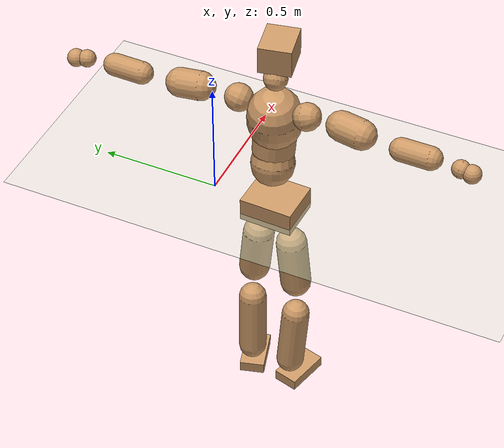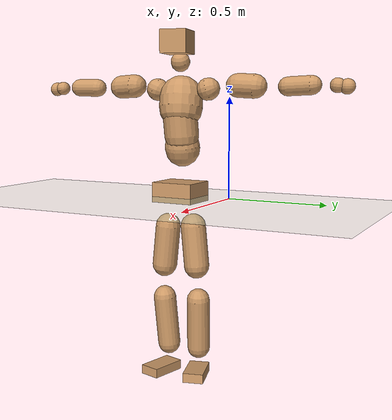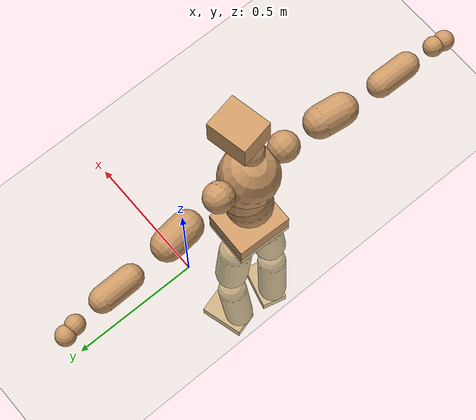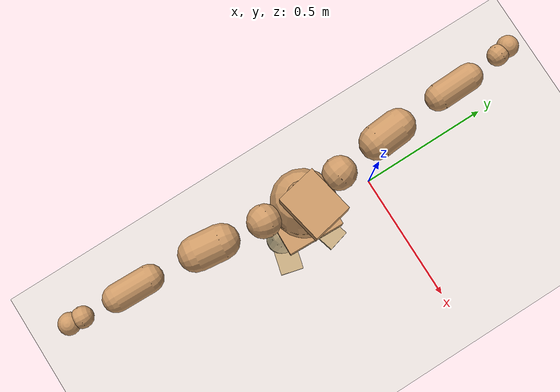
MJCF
<mujoco model="humanoid">
  <compiler coordinate="local" angle="radian"/>
  <default>
    <joint damping="0.0" armature="0.01" stiffness="0.0" limited="true"/>
    <geom conaffinity="1" condim="3" contype="7" margin="0.001" rgba="0.8 0.6 .4 1"/>
  </default>
  <asset>
    <texture type="skybox" builtin="gradient" rgb1=".4 .5 .6" rgb2="0 0 0" width="100" height="100"/>
    <texture builtin="flat" height="1278" mark="cross" markrgb="1 1 1" name="texgeom" random="0.01" rgb1="0.8 0.6 0.4" rgb2="0.8 0.6 0.4" type="cube" width="127"/>
    <texture builtin="checker" height="100" name="texplane" rgb1="0 0 0" rgb2="0.8 0.8 0.8" type="2d" width="100"/>
    <material name="MatPlane" reflectance="0.5" shininess="1" specular="1" texrepeat="60 60" texture="texplane"/>
    <material name="geom" texture="texgeom" texuniform="true"/>
  </asset>
  <worldbody>
    <light cutoff="100" diffuse="1 1 1" dir="-0 0 -1.3" directional="true" exponent="1" pos="0 0 1.3" specular=".1 .1 .1"/>
    <geom conaffinity="1" condim="3" name="floor" pos="0 0 0" rgba="0.8 0.9 0.8 1" size="100 100 .2" type="plane" material="MatPlane"/>
    <body name="Pelvis" pos="-0.0016 -0.2806 0.0282">
      <freejoint name="Pelvis"/>
      <geom type="box" contype="1" conaffinity="1" density="5359.375425" pos="-0.0118 0.0004 -0.0085" size="0.0958 0.1123 0.051" quat="0.9999 0.0000 0.0000 -0.0168" name="Pelvis"/>
      <body name="L_Hip" pos="-0.0184 0.0626 -0.0911">
        <joint name="L_Hip_x" type="hinge" pos="0 0 0" axis="1 0 0" stiffness="1600" damping="160" armature="0.02" range="-180.0000 180.0000"/>
        <joint name="L_Hip_y" type="hinge" pos="0 0 0" axis="0 1 0" stiffness="1600" damping="160" armature="0.02" range="-180.0000 180.0000"/>
        <joint name="L_Hip_z" type="hinge" pos="0 0 0" axis="0 0 1" stiffness="1600" damping="160" armature="0.02" range="-180.0000 180.0000"/>
        <geom type="capsule" contype="1" conaffinity="1" density="2040.816327" size="0.0652" fromto="0.0015 0.0099 -0.0946 0.0046 0.0316 -0.3026" name="L_Hip"/>
        <body name="L_Knee" pos="0.0061 0.0415 -0.3973">
          <joint name="L_Knee_x" type="hinge" pos="0 0 0" axis="1 0 0" stiffness="1600" damping="160" armature="0.02" range="-180.0000 180.0000"/>
          <joint name="L_Knee_y" type="hinge" pos="0 0 0" axis="0 1 0" stiffness="1600" damping="160" armature="0.02" range="-180.0000 180.0000"/>
          <joint name="L_Knee_z" type="hinge" pos="0 0 0" axis="0 0 1" stiffness="1600" damping="160" armature="0.02" range="-180.0000 180.0000"/>
          <geom type="capsule" contype="1" conaffinity="1" density="1234.567901" size="0.0594" fromto="-0.0085 -0.0034 -0.0889 -0.0339 -0.0135 -0.3546" name="L_Knee"/>
          <body name="L_Ankle" pos="-0.0425 -0.0169 -0.4436">
            <joint name="L_Ankle_x" type="hinge" pos="0 0 0" axis="1 0 0" stiffness="1600" damping="160" armature="0.02" range="-180.0000 180.0000"/>
            <joint name="L_Ankle_y" type="hinge" pos="0 0 0" axis="0 1 0" stiffness="1600" damping="160" armature="0.02" range="-180.0000 180.0000"/>
            <joint name="L_Ankle_z" type="hinge" pos="0 0 0" axis="0 0 1" stiffness="1600" damping="160" armature="0.02" range="-180.0000 180.0000"/>
            <geom type="box" contype="1" conaffinity="1" density="999.999986" pos="0.0653 0.0182 -0.0314" size="0.0932 0.0528 0.0245" quat="0.9908 0.0000 0.0000 0.1353" name="L_Ankle"/>
            <body name="L_Toe" pos="0.1306 0.0363 -0.0628">
              <joint name="L_Toe_x" type="hinge" pos="0 0 0" axis="1 0 0" stiffness="1000" damping="100" armature="0.02" range="-180.0000 180.0000"/>
              <joint name="L_Toe_y" type="hinge" pos="0 0 0" axis="0 1 0" stiffness="1000" damping="100" armature="0.02" range="-180.0000 180.0000"/>
              <joint name="L_Toe_z" type="hinge" pos="0 0 0" axis="0 0 1" stiffness="1000" damping="100" armature="0.02" range="-180.0000 180.0000"/>
              <geom type="box" contype="1" conaffinity="1" density="8328783.950991" pos="0.0000 0.0000 0.0314" size="0.0011 0.0026 0.0012" quat="0.9901 0.0000 0.0000 0.1403" name="L_Toe"/>
            </body>
          </body>
        </body>
      </body>
      <body name="R_Hip" pos="-0.0143 -0.0646 -0.0999">
        <joint name="R_Hip_x" type="hinge" pos="0 0 0" axis="1 0 0" stiffness="1600" damping="160" armature="0.02" range="-180.0000 180.0000"/>
        <joint name="R_Hip_y" type="hinge" pos="0 0 0" axis="0 1 0" stiffness="1600" damping="160" armature="0.02" range="-180.0000 180.0000"/>
        <joint name="R_Hip_z" type="hinge" pos="0 0 0" axis="0 0 1" stiffness="1600" damping="160" armature="0.02" range="-180.0000 180.0000"/>
        <geom type="capsule" contype="1" conaffinity="1" density="2040.816327" size="0.0649" fromto="-0.0013 -0.0103 -0.0943 -0.0042 -0.0332 -0.3040" name="R_Hip"/>
        <body name="R_Knee" pos="-0.0056 -0.0435 -0.3983">
          <joint name="R_Knee_x" type="hinge" pos="0 0 0" axis="1 0 0" stiffness="1600" damping="160" armature="0.02" range="-180.0000 180.0000"/>
          <joint name="R_Knee_y" type="hinge" pos="0 0 0" axis="0 1 0" stiffness="1600" damping="160" armature="0.02" range="-180.0000 180.0000"/>
          <joint name="R_Knee_z" type="hinge" pos="0 0 0" axis="0 0 1" stiffness="1600" damping="160" armature="0.02" range="-180.0000 180.0000"/>
          <geom type="capsule" contype="1" conaffinity="1" density="1234.567901" size="0.0591" fromto="-0.0078 0.0044 -0.0887 -0.0307 0.0176 -0.3505" name="R_Knee"/>
          <body name="R_Ankle" pos="-0.0384 0.022 -0.4392">
            <joint name="R_Ankle_x" type="hinge" pos="0 0 0" axis="1 0 0" stiffness="1600" damping="160" armature="0.02" range="-180.0000 180.0000"/>
            <joint name="R_Ankle_y" type="hinge" pos="0 0 0" axis="0 1 0" stiffness="1600" damping="160" armature="0.02" range="-180.0000 180.0000"/>
            <joint name="R_Ankle_z" type="hinge" pos="0 0 0" axis="0 0 1" stiffness="1600" damping="160" armature="0.02" range="-180.0000 180.0000"/>
            <geom type="box" contype="1" conaffinity="1" density="999.999984" pos="0.0695 -0.0179 -0.0327" size="0.0948 0.0536 0.024" quat="0.9920 0.0000 0.0000 -0.1260" name="R_Ankle"/>
            <body name="R_Toe" pos="0.139 -0.0359 -0.0653">
              <joint name="R_Toe_x" type="hinge" pos="0 0 0" axis="1 0 0" stiffness="1000" damping="100" armature="0.02" range="-180.0000 180.0000"/>
              <joint name="R_Toe_y" type="hinge" pos="0 0 0" axis="0 1 0" stiffness="1000" damping="100" armature="0.02" range="-180.0000 180.0000"/>
              <joint name="R_Toe_z" type="hinge" pos="0 0 0" axis="0 0 1" stiffness="1000" damping="100" armature="0.02" range="-180.0000 180.0000"/>
              <geom type="box" contype="1" conaffinity="1" density="7971814.207954" pos="0.0000 0.0000 0.0338" size="0.0011 0.0026 0.0013" quat="0.9931 0.0000 0.0000 -0.1177" name="R_Toe"/>
            </body>
          </body>
        </body>
      </body>
      <body name="Torso" pos="-0.0383 0.0044 0.1403">
        <joint name="Torso_x" type="hinge" pos="0 0 0" axis="1 0 0" stiffness="2000" damping="200" armature="0.02" range="-180.0000 180.0000"/>
        <joint name="Torso_y" type="hinge" pos="0 0 0" axis="0 1 0" stiffness="2000" damping="200" armature="0.02" range="-180.0000 180.0000"/>
        <joint name="Torso_z" type="hinge" pos="0 0 0" axis="0 0 1" stiffness="2000" damping="200" armature="0.02" range="-180.0000 180.0000"/>
        <geom type="capsule" contype="1" conaffinity="1" density="2040.816327" size="0.0897" fromto="0.0185 0.0033 0.0877 0.0150 0.0026 0.0707" name="Torso"/>
        <body name="Spine" pos="0.0335 0.0059 0.1584">
          <joint name="Spine_x" type="hinge" pos="0 0 0" axis="1 0 0" stiffness="2000" damping="200" armature="0.02" range="-180.0000 180.0000"/>
          <joint name="Spine_y" type="hinge" pos="0 0 0" axis="0 1 0" stiffness="2000" damping="200" armature="0.02" range="-180.0000 180.0000"/>
          <joint name="Spine_z" type="hinge" pos="0 0 0" axis="0 0 1" stiffness="2000" damping="200" armature="0.02" range="-180.0000 180.0000"/>
          <geom type="capsule" contype="1" conaffinity="1" density="2040.816327" size="0.0875" fromto="0.0070 -0.0042 0.0871 -0.0018 0.0011 -0.0219" name="Spine"/>
          <body name="Chest" pos="0.0052 -0.0031 0.0652">
            <joint name="Chest_x" type="hinge" pos="0 0 0" axis="1 0 0" stiffness="2000" damping="200" armature="0.02" range="-180.0000 180.0000"/>
            <joint name="Chest_y" type="hinge" pos="0 0 0" axis="0 1 0" stiffness="2000" damping="200" armature="0.02" range="-180.0000 180.0000"/>
            <joint name="Chest_z" type="hinge" pos="0 0 0" axis="0 0 1" stiffness="2000" damping="200" armature="0.02" range="-180.0000 180.0000"/>
            <geom type="capsule" contype="1" conaffinity="1" density="2040.816327" size="0.1102" fromto="-0.0217 -0.0059 0.1079 -0.0112 -0.0031 0.0556" name="Chest"/>
            <body name="Neck" pos="-0.0479 -0.0151 0.2388">
              <joint name="Neck_x" type="hinge" pos="0 0 0" axis="1 0 0" stiffness="1000" damping="100" armature="0.02" range="-180.0000 180.0000"/>
              <joint name="Neck_y" type="hinge" pos="0 0 0" axis="0 1 0" stiffness="1000" damping="100" armature="0.02" range="-180.0000 180.0000"/>
              <joint name="Neck_z" type="hinge" pos="0 0 0" axis="0 0 1" stiffness="1000" damping="100" armature="0.02" range="-180.0000 180.0000"/>
              <geom type="capsule" contype="1" conaffinity="1" density="1000" size="0.0486" fromto="0.0248 0.0041 0.0458 0.0258 0.0043 0.0476" name="Neck"/>
              <body name="Head" pos="0.0506 0.0084 0.0934">
                <joint name="Head_x" type="hinge" pos="0 0 0" axis="1 0 0" stiffness="1000" damping="100" armature="0.02" range="-180.0000 180.0000"/>
                <joint name="Head_y" type="hinge" pos="0 0 0" axis="0 1 0" stiffness="1000" damping="100" armature="0.02" range="-180.0000 180.0000"/>
                <joint name="Head_z" type="hinge" pos="0 0 0" axis="0 0 1" stiffness="1000" damping="100" armature="0.02" range="-180.0000 180.0000"/>
                <geom type="box" contype="1" conaffinity="1" density="2249.999975" pos="0.0263 0.0052 0.0477" size="0.0801 0.0666 0.0573" quat="0.9953 0.0000 0.0000 0.0973" name="Head"/>
              </body>
            </body>
            <body name="L_Thorax" pos="-0.0229 0.0763 0.1266">
              <joint name="L_Thorax_x" type="hinge" pos="0 0 0" axis="1 0 0" stiffness="1000" damping="100" armature="0.02" range="-180.0000 180.0000"/>
              <joint name="L_Thorax_y" type="hinge" pos="0 0 0" axis="0 1 0" stiffness="1000" damping="100" armature="0.02" range="-180.0000 180.0000"/>
              <joint name="L_Thorax_z" type="hinge" pos="0 0 0" axis="0 0 1" stiffness="1000" damping="100" armature="0.02" range="-180.0000 180.0000"/>
              <geom type="capsule" contype="1" conaffinity="1" density="1000" size="0.0571" fromto="-0.0103 0.0637 0.0223 -0.0106 0.0656 0.0229" name="L_Thorax"/>
              <body name="L_Shoulder" pos="-0.0208 0.1293 0.0452">
                <joint name="L_Shoulder_x" type="hinge" pos="0 0 0" axis="1 0 0" stiffness="1000" damping="100" armature="0.02" range="-720.0000 720.0000"/>
                <joint name="L_Shoulder_y" type="hinge" pos="0 0 0" axis="0 1 0" stiffness="1000" damping="100" armature="0.02" range="-720.0000 720.0000"/>
                <joint name="L_Shoulder_z" type="hinge" pos="0 0 0" axis="0 0 1" stiffness="1000" damping="100" armature="0.02" range="-720.0000 720.0000"/>
                <geom type="capsule" contype="1" conaffinity="1" density="1000" size="0.0595" fromto="-0.0077 0.0890 -0.0052 -0.0152 0.1749 -0.0101" name="L_Shoulder"/>
                <body name="L_Elbow" pos="-0.0229 0.2639 -0.0153">
                  <joint name="L_Elbow_x" type="hinge" pos="0 0 0" axis="1 0 0" stiffness="1000" damping="100" armature="0.02" range="-720.0000 720.0000"/>
                  <joint name="L_Elbow_y" type="hinge" pos="0 0 0" axis="0 1 0" stiffness="1000" damping="100" armature="0.02" range="-720.0000 720.0000"/>
                  <joint name="L_Elbow_z" type="hinge" pos="0 0 0" axis="0 0 1" stiffness="1000" damping="100" armature="0.02" range="-720.0000 720.0000"/>
                  <geom type="capsule" contype="1" conaffinity="1" density="1000" size="0.046" fromto="-0.0019 0.0759 0.0033 -0.0049 0.1946 0.0085" name="L_Elbow"/>
                  <body name="L_Wrist" pos="-0.0068 0.2705 0.0119">
                    <joint name="L_Wrist_x" type="hinge" pos="0 0 0" axis="1 0 0" stiffness="600" damping="60" armature="0.02" range="-180.0000 180.0000"/>
                    <joint name="L_Wrist_y" type="hinge" pos="0 0 0" axis="0 1 0" stiffness="600" damping="60" armature="0.02" range="-180.0000 180.0000"/>
                    <joint name="L_Wrist_z" type="hinge" pos="0 0 0" axis="0 0 1" stiffness="600" damping="60" armature="0.02" range="-180.0000 180.0000"/>
                    <geom type="capsule" contype="1" conaffinity="1" density="1000" size="0.0356" fromto="-0.0077 0.0434 -0.0053 -0.0080 0.0454 -0.0055" name="L_Wrist"/>
                    <body name="L_Hand" pos="-0.0157 0.0888 -0.0107">
                      <joint name="L_Hand_x" type="hinge" pos="0 0 0" axis="1 0 0" stiffness="600" damping="60" armature="0.02" range="-180.0000 180.0000"/>
                      <joint name="L_Hand_y" type="hinge" pos="0 0 0" axis="0 1 0" stiffness="600" damping="60" armature="0.02" range="-180.0000 180.0000"/>
                      <joint name="L_Hand_z" type="hinge" pos="0 0 0" axis="0 0 1" stiffness="600" damping="60" armature="0.02" range="-180.0000 180.0000"/>
                      <geom type="sphere" contype="1" conaffinity="1" density="1000" size="0.0367" pos="0.0000 0.0000 0.0000" name="L_Hand"/>
                    </body>
                  </body>
                </body>
              </body>
            </body>
            <body name="R_Thorax" pos="-0.0277 -0.0881 0.1251">
              <joint name="R_Thorax_x" type="hinge" pos="0 0 0" axis="1 0 0" stiffness="1000" damping="100" armature="0.02" range="-180.0000 180.0000"/>
              <joint name="R_Thorax_y" type="hinge" pos="0 0 0" axis="0 1 0" stiffness="1000" damping="100" armature="0.02" range="-180.0000 180.0000"/>
              <joint name="R_Thorax_z" type="hinge" pos="0 0 0" axis="0 0 1" stiffness="1000" damping="100" armature="0.02" range="-180.0000 180.0000"/>
              <geom type="capsule" contype="1" conaffinity="1" density="1000" size="0.0569" fromto="-0.0045 -0.0588 0.0233 -0.0046 -0.0606 0.0240" name="R_Thorax"/>
              <body name="R_Shoulder" pos="-0.0091 -0.1194 0.0473">
                <joint name="R_Shoulder_x" type="hinge" pos="0 0 0" axis="1 0 0" stiffness="1000" damping="100" armature="0.02" range="-720.0000 720.0000"/>
                <joint name="R_Shoulder_y" type="hinge" pos="0 0 0" axis="0 1 0" stiffness="1000" damping="100" armature="0.02" range="-720.0000 720.0000"/>
                <joint name="R_Shoulder_z" type="hinge" pos="0 0 0" axis="0 0 1" stiffness="1000" damping="100" armature="0.02" range="-720.0000 720.0000"/>
                <geom type="capsule" contype="1" conaffinity="1" density="1000" size="0.0603" fromto="-0.0110 -0.0895 -0.0043 -0.0219 -0.1775 -0.0084" name="R_Shoulder"/>
                <body name="R_Elbow" pos="-0.0329 -0.267 -0.0127">
                  <joint name="R_Elbow_x" type="hinge" pos="0 0 0" axis="1 0 0" stiffness="1000" damping="100" armature="0.02" range="-720.0000 720.0000"/>
                  <joint name="R_Elbow_y" type="hinge" pos="0 0 0" axis="0 1 0" stiffness="1000" damping="100" armature="0.02" range="-720.0000 720.0000"/>
                  <joint name="R_Elbow_z" type="hinge" pos="0 0 0" axis="0 0 1" stiffness="1000" damping="100" armature="0.02" range="-720.0000 720.0000"/>
                  <geom type="capsule" contype="1" conaffinity="1" density="1000" size="0.0467" fromto="-0.0020 -0.0767 0.0013 -0.0050 -0.1966 0.0033" name="R_Elbow"/>
                  <body name="R_Wrist" pos="-0.007 -0.2733 0.0046">
                    <joint name="R_Wrist_x" type="hinge" pos="0 0 0" axis="1 0 0" stiffness="600" damping="60" armature="0.02" range="-180.0000 180.0000"/>
                    <joint name="R_Wrist_y" type="hinge" pos="0 0 0" axis="0 1 0" stiffness="600" damping="60" armature="0.02" range="-180.0000 180.0000"/>
                    <joint name="R_Wrist_z" type="hinge" pos="0 0 0" axis="0 0 1" stiffness="600" damping="60" armature="0.02" range="-180.0000 180.0000"/>
                    <geom type="capsule" contype="1" conaffinity="1" density="1000" size="0.0363" fromto="-0.0048 -0.0447 -0.0042 -0.0050 -0.0467 -0.0044" name="R_Wrist"/>
                    <body name="R_Hand" pos="-0.0098 -0.0914 -0.0087">
                      <joint name="R_Hand_x" type="hinge" pos="0 0 0" axis="1 0 0" stiffness="600" damping="60" armature="0.02" range="-180.0000 180.0000"/>
                      <joint name="R_Hand_y" type="hinge" pos="0 0 0" axis="0 1 0" stiffness="600" damping="60" armature="0.02" range="-180.0000 180.0000"/>
                      <joint name="R_Hand_z" type="hinge" pos="0 0 0" axis="0 0 1" stiffness="600" damping="60" armature="0.02" range="-180.0000 180.0000"/>
                      <geom type="sphere" contype="1" conaffinity="1" density="1000" size="0.0373" pos="0.0000 0.0000 0.0000" name="R_Hand"/>
                    </body>
                  </body>
                </body>
              </body>
            </body>
          </body>
        </body>
      </body>
    </body>
  </worldbody>
  <actuator>
    <motor name="L_Hip_x" joint="L_Hip_x" gear="500"/>
    <motor name="L_Hip_y" joint="L_Hip_y" gear="500"/>
    <motor name="L_Hip_z" joint="L_Hip_z" gear="500"/>
    <motor name="L_Knee_x" joint="L_Knee_x" gear="500"/>
    <motor name="L_Knee_y" joint="L_Knee_y" gear="500"/>
    <motor name="L_Knee_z" joint="L_Knee_z" gear="500"/>
    <motor name="L_Ankle_x" joint="L_Ankle_x" gear="500"/>
    <motor name="L_Ankle_y" joint="L_Ankle_y" gear="500"/>
    <motor name="L_Ankle_z" joint="L_Ankle_z" gear="500"/>
    <motor name="L_Toe_x" joint="L_Toe_x" gear="500"/>
    <motor name="L_Toe_y" joint="L_Toe_y" gear="500"/>
    <motor name="L_Toe_z" joint="L_Toe_z" gear="500"/>
    <motor name="R_Hip_x" joint="R_Hip_x" gear="500"/>
    <motor name="R_Hip_y" joint="R_Hip_y" gear="500"/>
    <motor name="R_Hip_z" joint="R_Hip_z" gear="500"/>
    <motor name="R_Knee_x" joint="R_Knee_x" gear="500"/>
    <motor name="R_Knee_y" joint="R_Knee_y" gear="500"/>
    <motor name="R_Knee_z" joint="R_Knee_z" gear="500"/>
    <motor name="R_Ankle_x" joint="R_Ankle_x" gear="500"/>
    <motor name="R_Ankle_y" joint="R_Ankle_y" gear="500"/>
    <motor name="R_Ankle_z" joint="R_Ankle_z" gear="500"/>
    <motor name="R_Toe_x" joint="R_Toe_x" gear="500"/>
    <motor name="R_Toe_y" joint="R_Toe_y" gear="500"/>
    <motor name="R_Toe_z" joint="R_Toe_z" gear="500"/>
    <motor name="Torso_x" joint="Torso_x" gear="500"/>
    <motor name="Torso_y" joint="Torso_y" gear="500"/>
    <motor name="Torso_z" joint="Torso_z" gear="500"/>
    <motor name="Spine_x" joint="Spine_x" gear="500"/>
    <motor name="Spine_y" joint="Spine_y" gear="500"/>
    <motor name="Spine_z" joint="Spine_z" gear="500"/>
    <motor name="Chest_x" joint="Chest_x" gear="500"/>
    <motor name="Chest_y" joint="Chest_y" gear="500"/>
    <motor name="Chest_z" joint="Chest_z" gear="500"/>
    <motor name="Neck_x" joint="Neck_x" gear="500"/>
    <motor name="Neck_y" joint="Neck_y" gear="500"/>
    <motor name="Neck_z" joint="Neck_z" gear="500"/>
    <motor name="Head_x" joint="Head_x" gear="500"/>
    <motor name="Head_y" joint="Head_y" gear="500"/>
    <motor name="Head_z" joint="Head_z" gear="500"/>
    <motor name="L_Thorax_x" joint="L_Thorax_x" gear="500"/>
    <motor name="L_Thorax_y" joint="L_Thorax_y" gear="500"/>
    <motor name="L_Thorax_z" joint="L_Thorax_z" gear="500"/>
    <motor name="L_Shoulder_x" joint="L_Shoulder_x" gear="500"/>
    <motor name="L_Shoulder_y" joint="L_Shoulder_y" gear="500"/>
    <motor name="L_Shoulder_z" joint="L_Shoulder_z" gear="500"/>
    <motor name="L_Elbow_x" joint="L_Elbow_x" gear="500"/>
    <motor name="L_Elbow_y" joint="L_Elbow_y" gear="500"/>
    <motor name="L_Elbow_z" joint="L_Elbow_z" gear="500"/>
    <motor name="L_Wrist_x" joint="L_Wrist_x" gear="500"/>
    <motor name="L_Wrist_y" joint="L_Wrist_y" gear="500"/>
    <motor name="L_Wrist_z" joint="L_Wrist_z" gear="500"/>
    <motor name="L_Hand_x" joint="L_Hand_x" gear="500"/>
    <motor name="L_Hand_y" joint="L_Hand_y" gear="500"/>
    <motor name="L_Hand_z" joint="L_Hand_z" gear="500"/>
    <motor name="R_Thorax_x" joint="R_Thorax_x" gear="500"/>
    <motor name="R_Thorax_y" joint="R_Thorax_y" gear="500"/>
    <motor name="R_Thorax_z" joint="R_Thorax_z" gear="500"/>
    <motor name="R_Shoulder_x" joint="R_Shoulder_x" gear="500"/>
    <motor name="R_Shoulder_y" joint="R_Shoulder_y" gear="500"/>
    <motor name="R_Shoulder_z" joint="R_Shoulder_z" gear="500"/>
    <motor name="R_Elbow_x" joint="R_Elbow_x" gear="500"/>
    <motor name="R_Elbow_y" joint="R_Elbow_y" gear="500"/>
    <motor name="R_Elbow_z" joint="R_Elbow_z" gear="500"/>
    <motor name="R_Wrist_x" joint="R_Wrist_x" gear="500"/>
    <motor name="R_Wrist_y" joint="R_Wrist_y" gear="500"/>
    <motor name="R_Wrist_z" joint="R_Wrist_z" gear="500"/>
    <motor name="R_Hand_x" joint="R_Hand_x" gear="500"/>
    <motor name="R_Hand_y" joint="R_Hand_y" gear="500"/>
    <motor name="R_Hand_z" joint="R_Hand_z" gear="500"/>
  </actuator>
  <contact>
    <exclude body1="Torso" body2="Chest"/>
    <exclude body1="Head" body2="Chest"/>
    <exclude body1="R_Knee" body2="R_Toe"/>
    <exclude body1="R_Knee" body2="L_Ankle"/>
    <exclude body1="R_Knee" body2="L_Toe"/>
    <exclude body1="L_Knee" body2="L_Toe"/>
    <exclude body1="L_Knee" body2="R_Ankle"/>
    <exclude body1="L_Knee" body2="R_Toe"/>
    <exclude body1="L_Shoulder" body2="Chest"/>
    <exclude body1="R_Shoulder" body2="Chest"/>
  </contact>
  <sensor/>
  <size njmax="700" nconmax="700"/>
</mujoco>
